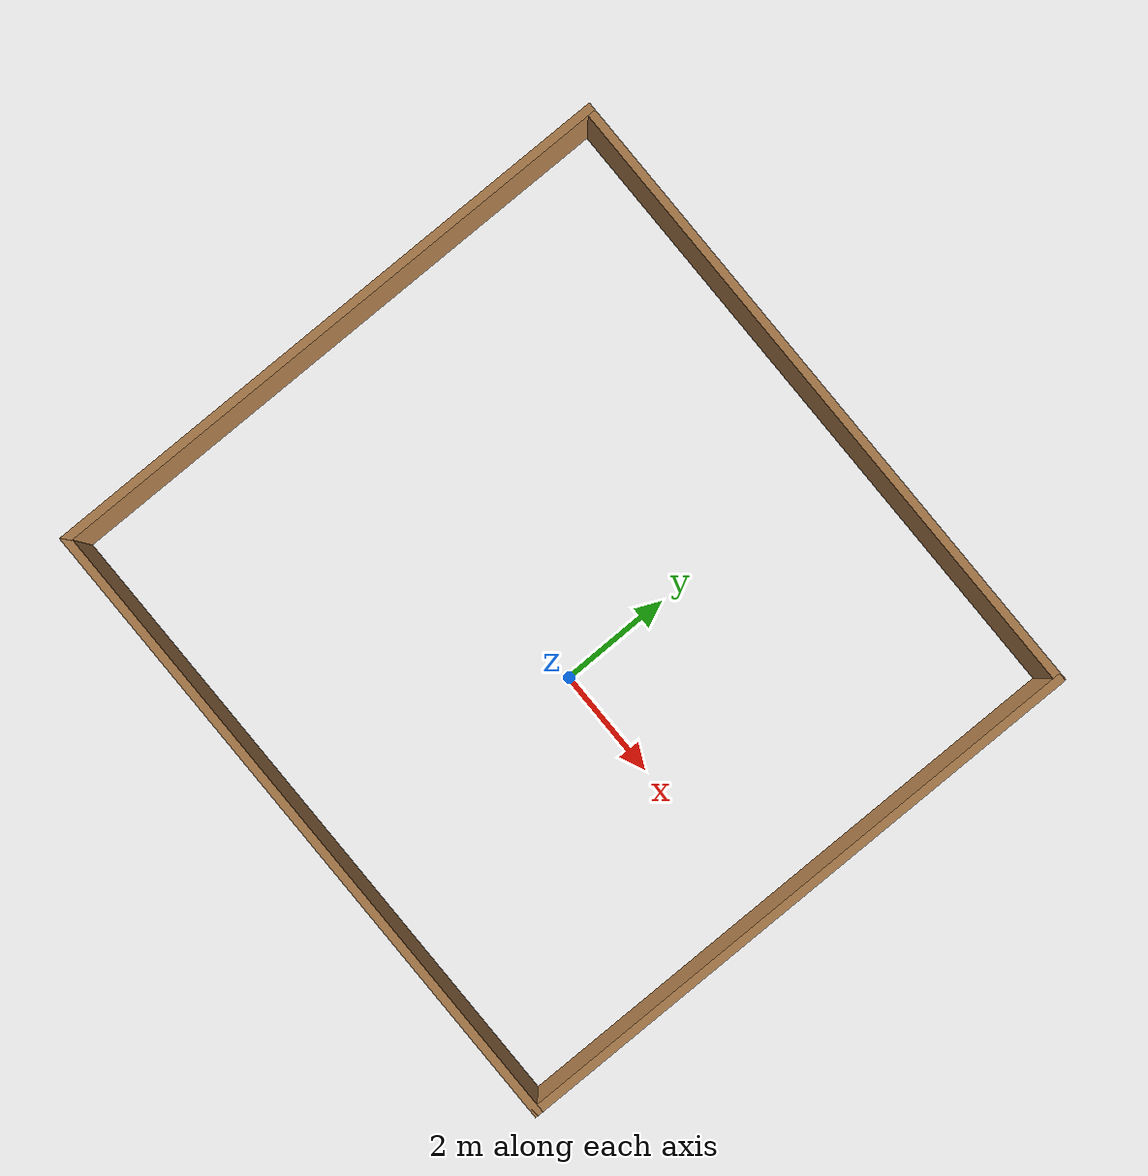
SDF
<?xml version='1.0'?>
<sdf version='1.7'>
  <model name='wall_frame_1'>
    <pose>-0.919579 0.615418 0 0 -0 0</pose>
    <link name='Wall_10'>
      <collision name='Wall_10_Collision'>
        <geometry>
          <box>
            <size>11 0.15 2.5</size>
          </box>
        </geometry>
        <pose>0 0 1.25 0 -0 0</pose>
      </collision>
      <visual name='Wall_10_Visual'>
        <pose>0 0 1.25 0 -0 0</pose>
        <geometry>
          <box>
            <size>11 0.15 2.5</size>
          </box>
        </geometry>
        <material>
          <script>
            <uri>file://media/materials/scripts/gazebo.material</uri>
            <name>Gazebo/Wood</name>
          </script>
          <ambient>1 1 1 1</ambient>
        </material>
        <meta>
          <layer>0</layer>
        </meta>
      </visual>
      <pose>-5.925 -0 0 0 -0 1.5708</pose>
    </link>
    <link name='Wall_7'>
      <collision name='Wall_7_Collision'>
        <geometry>
          <box>
            <size>12 0.15 2.5</size>
          </box>
        </geometry>
        <pose>0 0 1.25 0 -0 0</pose>
      </collision>
      <visual name='Wall_7_Visual'>
        <pose>0 0 1.25 0 -0 0</pose>
        <geometry>
          <box>
            <size>12 0.15 2.5</size>
          </box>
        </geometry>
        <material>
          <script>
            <uri>file://media/materials/scripts/gazebo.material</uri>
            <name>Gazebo/Wood</name>
          </script>
          <ambient>1 1 1 1</ambient>
        </material>
        <meta>
          <layer>0</layer>
        </meta>
      </visual>
      <pose>0 5.425 0 0 -0 0</pose>
    </link>
    <link name='Wall_8'>
      <collision name='Wall_8_Collision'>
        <geometry>
          <box>
            <size>11 0.15 2.5</size>
          </box>
        </geometry>
        <pose>0 0 1.25 0 -0 0</pose>
      </collision>
      <visual name='Wall_8_Visual'>
        <pose>0 0 1.25 0 -0 0</pose>
        <geometry>
          <box>
            <size>11 0.15 2.5</size>
          </box>
        </geometry>
        <material>
          <script>
            <uri>file://media/materials/scripts/gazebo.material</uri>
            <name>Gazebo/Wood</name>
          </script>
          <ambient>1 1 1 1</ambient>
        </material>
        <meta>
          <layer>0</layer>
        </meta>
      </visual>
      <pose>5.925 -0 0 0 -0 -1.5708</pose>
    </link>
    <link name='Wall_9'>
      <collision name='Wall_9_Collision'>
        <geometry>
          <box>
            <size>12 0.15 2.5</size>
          </box>
        </geometry>
        <pose>0 0 1.25 0 -0 0</pose>
      </collision>
      <visual name='Wall_9_Visual'>
        <pose>0 0 1.25 0 -0 0</pose>
        <geometry>
          <box>
            <size>12 0.15 2.5</size>
          </box>
        </geometry>
        <material>
          <script>
            <uri>file://media/materials/scripts/gazebo.material</uri>
            <name>Gazebo/Wood</name>
          </script>
          <ambient>1 1 1 1</ambient>
        </material>
        <meta>
          <layer>0</layer>
        </meta>
      </visual>
      <pose>0 -5.425 0 0 -0 3.14159</pose>
    </link>
    <static>1</static>
  </model>
</sdf>
